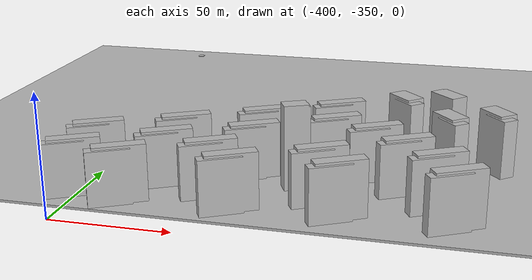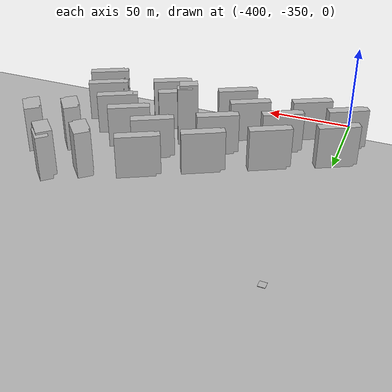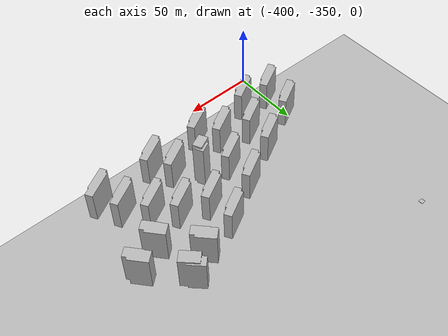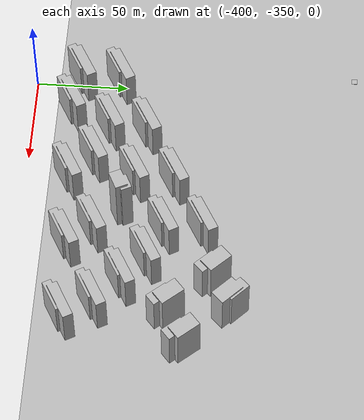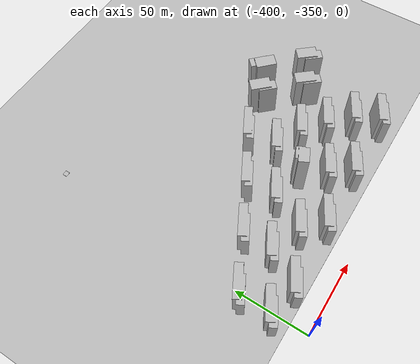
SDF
<sdf version="1.7">
 <world name="default">
  <model name="ground_plane">
   <static>1</static>
   <link name="link">
    <collision name="collision">
     <geometry><mesh><uri>model://ground_plane/scripts/plane.dae</uri><normal>0 0 1</normal></mesh></geometry>
     <surface><friction><ode><mu>100</mu><mu2>50</mu2></ode></friction></surface>
    </collision>
    <visual name="visual">
     <geometry><mesh><uri>model://ground_plane/scripts/plane.dae</uri><normal>0 0 1</normal></mesh></geometry>
     <material>
      <lighting>1</lighting>
      <script><uri>model://ground_plane/scripts/plane.jpg</uri><name>__default__</name></script>
      <shader type="pixel"/>
     </material>
    </visual>
   </link>
  </model>
  <model name="apartment5">
   <static>1</static>
   <link name="link_0">
    <inertial>
     <mass>1</mass>
     <inertia>
      <ixx>0.166667</ixx>
      <ixy>0</ixy>
      <ixz>0</ixz>
      <iyy>0.166667</iyy>
      <iyz>0</iyz>
      <izz>0.166667</izz>
     </inertia>
    </inertial>
    <pose>1e-06 -0 0 0 -0 0</pose>
    <visual name="visual">
     <geometry>
      <mesh><uri>model://apartment5/scripts/apartment1.dae</uri><scale>0.35 0.14 0.22</scale></mesh>
     </geometry>
     <material>
      <lighting>1</lighting>
      <script><uri>model://apartment5/scripts/apartment1.jpg</uri><name>__default__</name></script>
      <shader type="pixel"/>
     </material>
    </visual>
    <collision name="collision">
     <geometry>
      <mesh><uri>model://apartment5/scripts/apartment1.dae</uri><scale>0.35 0.14 0.22</scale></mesh>
     </geometry>
     <surface>
      <friction>
       <ode><mu>1</mu><mu2>1</mu2><fdir1>0 0 0</fdir1><slip1>0</slip1><slip2>0</slip2></ode>
       <torsional>
        <coefficient>1</coefficient>
        <patch_radius>0</patch_radius>
        <surface_radius>0</surface_radius>
        <use_patch_radius>1</use_patch_radius>
        <ode><slip>0</slip></ode>
       </torsional>
      </friction>
      <bounce><restitution_coefficient>0</restitution_coefficient><threshold>1e+06</threshold></bounce>
      <contact>
       <collide_without_contact>0</collide_without_contact>
       <collide_without_contact_bitmask>1</collide_without_contact_bitmask>
       <collide_bitmask>1</collide_bitmask>
       <ode>
        <soft_cfm>0</soft_cfm>
        <soft_erp>0.2</soft_erp>
        <kp>1e+13</kp>
        <kd>1</kd>
        <max_vel>0.01</max_vel>
        <min_depth>0</min_depth>
       </ode>
       <bullet>
        <split_impulse>1</split_impulse>
        <split_impulse_penetration_threshold>-0.01</split_impulse_penetration_threshold>
        <soft_cfm>0</soft_cfm>
        <soft_erp>0.2</soft_erp>
        <kp>1e+13</kp>
        <kd>1</kd>
       </bullet>
      </contact>
     </surface>
    </collision>
   </link>
   <static>0</static>
   <pose>-258.765 -236.93 0 0 0 -0.783167</pose>
  </model>
  <model name="apartment5_clone">
   <static>1</static>
   <link name="link_0">
    <inertial>
     <mass>1</mass>
     <inertia>
      <ixx>0.166667</ixx>
      <ixy>0</ixy>
      <ixz>0</ixz>
      <iyy>0.166667</iyy>
      <iyz>0</iyz>
      <izz>0.166667</izz>
     </inertia>
    </inertial>
    <pose>1e-06 -0 0 0 -0 0</pose>
    <visual name="visual">
     <geometry>
      <mesh><uri>model://apartment5/scripts/apartment1.dae</uri><scale>0.35 0.14 0.22</scale></mesh>
     </geometry>
     <material>
      <lighting>1</lighting>
      <script><uri>model://apartment5/scripts/apartment1.jpg</uri><name>__default__</name></script>
      <shader type="pixel"/>
     </material>
    </visual>
    <collision name="collision">
     <geometry>
      <mesh><uri>model://apartment5/scripts/apartment1.dae</uri><scale>0.35 0.14 0.22</scale></mesh>
     </geometry>
     <surface>
      <friction>
       <ode><mu>1</mu><mu2>1</mu2><fdir1>0 0 0</fdir1><slip1>0</slip1><slip2>0</slip2></ode>
       <torsional>
        <coefficient>1</coefficient>
        <patch_radius>0</patch_radius>
        <surface_radius>0</surface_radius>
        <use_patch_radius>1</use_patch_radius>
        <ode><slip>0</slip></ode>
       </torsional>
      </friction>
      <bounce><restitution_coefficient>0</restitution_coefficient><threshold>1e+06</threshold></bounce>
      <contact>
       <collide_without_contact>0</collide_without_contact>
       <collide_without_contact_bitmask>1</collide_without_contact_bitmask>
       <collide_bitmask>1</collide_bitmask>
       <ode>
        <soft_cfm>0</soft_cfm>
        <soft_erp>0.2</soft_erp>
        <kp>1e+13</kp>
        <kd>1</kd>
        <max_vel>0.01</max_vel>
        <min_depth>0</min_depth>
       </ode>
       <bullet>
        <split_impulse>1</split_impulse>
        <split_impulse_penetration_threshold>-0.01</split_impulse_penetration_threshold>
        <soft_cfm>0</soft_cfm>
        <soft_erp>0.2</soft_erp>
        <kp>1e+13</kp>
        <kd>1</kd>
       </bullet>
      </contact>
     </surface>
    </collision>
   </link>
   <static>0</static>
   <pose>-236.926 -257.475 0 0 -0 2.27204</pose>
  </model>
  <model name="apartment5_clone_clone">
   <static>1</static>
   <link name="link_0">
    <inertial>
     <mass>1</mass>
     <inertia>
      <ixx>0.166667</ixx>
      <ixy>0</ixy>
      <ixz>0</ixz>
      <iyy>0.166667</iyy>
      <iyz>0</iyz>
      <izz>0.166667</izz>
     </inertia>
    </inertial>
    <pose>1e-06 -0 0 0 -0 0</pose>
    <visual name="visual">
     <geometry>
      <mesh><uri>model://apartment5/scripts/apartment1.dae</uri><scale>0.35 0.14 0.22</scale></mesh>
     </geometry>
     <material>
      <lighting>1</lighting>
      <script><uri>model://apartment5/scripts/apartment1.jpg</uri><name>__default__</name></script>
      <shader type="pixel"/>
     </material>
    </visual>
    <collision name="collision">
     <geometry>
      <mesh><uri>model://apartment5/scripts/apartment1.dae</uri><scale>0.35 0.14 0.22</scale></mesh>
     </geometry>
     <surface>
      <friction>
       <ode><mu>1</mu><mu2>1</mu2><fdir1>0 0 0</fdir1><slip1>0</slip1><slip2>0</slip2></ode>
       <torsional>
        <coefficient>1</coefficient>
        <patch_radius>0</patch_radius>
        <surface_radius>0</surface_radius>
        <use_patch_radius>1</use_patch_radius>
        <ode><slip>0</slip></ode>
       </torsional>
      </friction>
      <bounce><restitution_coefficient>0</restitution_coefficient><threshold>1e+06</threshold></bounce>
      <contact>
       <collide_without_contact>0</collide_without_contact>
       <collide_without_contact_bitmask>1</collide_without_contact_bitmask>
       <collide_bitmask>1</collide_bitmask>
       <ode>
        <soft_cfm>0</soft_cfm>
        <soft_erp>0.2</soft_erp>
        <kp>1e+13</kp>
        <kd>1</kd>
        <max_vel>0.01</max_vel>
        <min_depth>0</min_depth>
       </ode>
       <bullet>
        <split_impulse>1</split_impulse>
        <split_impulse_penetration_threshold>-0.01</split_impulse_penetration_threshold>
        <soft_cfm>0</soft_cfm>
        <soft_erp>0.2</soft_erp>
        <kp>1e+13</kp>
        <kd>1</kd>
       </bullet>
      </contact>
     </surface>
    </collision>
   </link>
   <static>0</static>
   <pose>-256.288 -266.667 0 0 -0 2.27204</pose>
  </model>
  <model name="apartment5_clone_2">
   <static>1</static>
   <link name="link_0">
    <inertial>
     <mass>1</mass>
     <inertia>
      <ixx>0.166667</ixx>
      <ixy>0</ixy>
      <ixz>0</ixz>
      <iyy>0.166667</iyy>
      <iyz>0</iyz>
      <izz>0.166667</izz>
     </inertia>
    </inertial>
    <pose>1e-06 -0 0 0 -0 0</pose>
    <visual name="visual">
     <geometry>
      <mesh><uri>model://apartment5/scripts/apartment1.dae</uri><scale>0.35 0.14 0.22</scale></mesh>
     </geometry>
     <material>
      <lighting>1</lighting>
      <script><uri>model://apartment5/scripts/apartment1.jpg</uri><name>__default__</name></script>
      <shader type="pixel"/>
     </material>
    </visual>
    <collision name="collision">
     <geometry>
      <mesh><uri>model://apartment5/scripts/apartment1.dae</uri><scale>0.35 0.14 0.22</scale></mesh>
     </geometry>
     <surface>
      <friction>
       <ode><mu>1</mu><mu2>1</mu2><fdir1>0 0 0</fdir1><slip1>0</slip1><slip2>0</slip2></ode>
       <torsional>
        <coefficient>1</coefficient>
        <patch_radius>0</patch_radius>
        <surface_radius>0</surface_radius>
        <use_patch_radius>1</use_patch_radius>
        <ode><slip>0</slip></ode>
       </torsional>
      </friction>
      <bounce><restitution_coefficient>0</restitution_coefficient><threshold>1e+06</threshold></bounce>
      <contact>
       <collide_without_contact>0</collide_without_contact>
       <collide_without_contact_bitmask>1</collide_without_contact_bitmask>
       <collide_bitmask>1</collide_bitmask>
       <ode>
        <soft_cfm>0</soft_cfm>
        <soft_erp>0.2</soft_erp>
        <kp>1e+13</kp>
        <kd>1</kd>
        <max_vel>0.01</max_vel>
        <min_depth>0</min_depth>
       </ode>
       <bullet>
        <split_impulse>1</split_impulse>
        <split_impulse_penetration_threshold>-0.01</split_impulse_penetration_threshold>
        <soft_cfm>0</soft_cfm>
        <soft_erp>0.2</soft_erp>
        <kp>1e+13</kp>
        <kd>1</kd>
       </bullet>
      </contact>
     </surface>
    </collision>
   </link>
   <static>0</static>
   <pose>-277.284 -243.703 0 0 -0 2.32817</pose>
  </model>
  <model name="apartment6_clone">
   <static>1</static>
   <link name="link_0">
    <inertial>
     <mass>1</mass>
     <inertia>
      <ixx>0.166667</ixx>
      <ixy>0</ixy>
      <ixz>0</ixz>
      <iyy>0.166667</iyy>
      <iyz>0</iyz>
      <izz>0.166667</izz>
     </inertia>
    </inertial>
    <pose>1e-06 -0 0 0 -0 0</pose>
    <visual name="visual">
     <geometry>
      <mesh><uri>model://apartment6/scripts/apartment1.dae</uri><scale>0.14 0.35 0.2</scale></mesh>
     </geometry>
     <material>
      <lighting>1</lighting>
      <script><uri>model://apartment6/scripts/apartment1.jpg</uri><name>__default__</name></script>
      <shader type="pixel"/>
     </material>
    </visual>
    <collision name="collision">
     <geometry>
      <mesh><uri>model://apartment6/scripts/apartment1.dae</uri><scale>0.14 0.35 0.2</scale></mesh>
     </geometry>
     <surface>
      <friction>
       <ode><mu>1</mu><mu2>1</mu2><fdir1>0 0 0</fdir1><slip1>0</slip1><slip2>0</slip2></ode>
       <torsional>
        <coefficient>1</coefficient>
        <patch_radius>0</patch_radius>
        <surface_radius>0</surface_radius>
        <use_patch_radius>1</use_patch_radius>
        <ode><slip>0</slip></ode>
       </torsional>
      </friction>
      <bounce><restitution_coefficient>0</restitution_coefficient><threshold>1e+06</threshold></bounce>
      <contact>
       <collide_without_contact>0</collide_without_contact>
       <collide_without_contact_bitmask>1</collide_without_contact_bitmask>
       <collide_bitmask>1</collide_bitmask>
       <ode>
        <soft_cfm>0</soft_cfm>
        <soft_erp>0.2</soft_erp>
        <kp>1e+13</kp>
        <kd>1</kd>
        <max_vel>0.01</max_vel>
        <min_depth>0</min_depth>
       </ode>
       <bullet>
        <split_impulse>1</split_impulse>
        <split_impulse_penetration_threshold>-0.01</split_impulse_penetration_threshold>
        <soft_cfm>0</soft_cfm>
        <soft_erp>0.2</soft_erp>
        <kp>1e+13</kp>
        <kd>1</kd>
       </bullet>
      </contact>
     </surface>
    </collision>
   </link>
   <static>0</static>
   <pose>-335.264 -268.23 0 0 -0 2.07367</pose>
  </model>
  <model name="apartment6_clone_0">
   <static>1</static>
   <link name="link_0">
    <inertial>
     <mass>1</mass>
     <inertia>
      <ixx>0.166667</ixx>
      <ixy>0</ixy>
      <ixz>0</ixz>
      <iyy>0.166667</iyy>
      <iyz>0</iyz>
      <izz>0.166667</izz>
     </inertia>
    </inertial>
    <pose>1e-06 -0 0 0 -0 0</pose>
    <visual name="visual">
     <geometry>
      <mesh><uri>model://apartment6/scripts/apartment1.dae</uri><scale>0.14 0.35 0.2</scale></mesh>
     </geometry>
     <material>
      <lighting>1</lighting>
      <script><uri>model://apartment6/scripts/apartment1.jpg</uri><name>__default__</name></script>
      <shader type="pixel"/>
     </material>
    </visual>
    <collision name="collision">
     <geometry>
      <mesh><uri>model://apartment6/scripts/apartment1.dae</uri><scale>0.14 0.35 0.2</scale></mesh>
     </geometry>
     <surface>
      <friction>
       <ode><mu>1</mu><mu2>1</mu2><fdir1>0 0 0</fdir1><slip1>0</slip1><slip2>0</slip2></ode>
       <torsional>
        <coefficient>1</coefficient>
        <patch_radius>0</patch_radius>
        <surface_radius>0</surface_radius>
        <use_patch_radius>1</use_patch_radius>
        <ode><slip>0</slip></ode>
       </torsional>
      </friction>
      <bounce><restitution_coefficient>0</restitution_coefficient><threshold>1e+06</threshold></bounce>
      <contact>
       <collide_without_contact>0</collide_without_contact>
       <collide_without_contact_bitmask>1</collide_without_contact_bitmask>
       <collide_bitmask>1</collide_bitmask>
       <ode>
        <soft_cfm>0</soft_cfm>
        <soft_erp>0.2</soft_erp>
        <kp>1e+13</kp>
        <kd>1</kd>
        <max_vel>0.01</max_vel>
        <min_depth>0</min_depth>
       </ode>
       <bullet>
        <split_impulse>1</split_impulse>
        <split_impulse_penetration_threshold>-0.01</split_impulse_penetration_threshold>
        <soft_cfm>0</soft_cfm>
        <soft_erp>0.2</soft_erp>
        <kp>1e+13</kp>
        <kd>1</kd>
       </bullet>
      </contact>
     </surface>
    </collision>
   </link>
   <static>0</static>
   <pose>-366.84 -285.113 0 0 -0 2.07367</pose>
  </model>
  <model name="apartment6_clone_1">
   <static>1</static>
   <link name="link_0">
    <inertial>
     <mass>1</mass>
     <inertia>
      <ixx>0.166667</ixx>
      <ixy>0</ixy>
      <ixz>0</ixz>
      <iyy>0.166667</iyy>
      <iyz>0</iyz>
      <izz>0.166667</izz>
     </inertia>
    </inertial>
    <pose>1e-06 -0 0 0 -0 0</pose>
    <visual name="visual">
     <geometry>
      <mesh><uri>model://apartment6/scripts/apartment1.dae</uri><scale>0.14 0.35 0.2</scale></mesh>
     </geometry>
     <material>
      <lighting>1</lighting>
      <script><uri>model://apartment6/scripts/apartment1.jpg</uri><name>__default__</name></script>
      <shader type="pixel"/>
     </material>
    </visual>
    <collision name="collision">
     <geometry>
      <mesh><uri>model://apartment6/scripts/apartment1.dae</uri><scale>0.14 0.35 0.2</scale></mesh>
     </geometry>
     <surface>
      <friction>
       <ode><mu>1</mu><mu2>1</mu2><fdir1>0 0 0</fdir1><slip1>0</slip1><slip2>0</slip2></ode>
       <torsional>
        <coefficient>1</coefficient>
        <patch_radius>0</patch_radius>
        <surface_radius>0</surface_radius>
        <use_patch_radius>1</use_patch_radius>
        <ode><slip>0</slip></ode>
       </torsional>
      </friction>
      <bounce><restitution_coefficient>0</restitution_coefficient><threshold>1e+06</threshold></bounce>
      <contact>
       <collide_without_contact>0</collide_without_contact>
       <collide_without_contact_bitmask>1</collide_without_contact_bitmask>
       <collide_bitmask>1</collide_bitmask>
       <ode>
        <soft_cfm>0</soft_cfm>
        <soft_erp>0.2</soft_erp>
        <kp>1e+13</kp>
        <kd>1</kd>
        <max_vel>0.01</max_vel>
        <min_depth>0</min_depth>
       </ode>
       <bullet>
        <split_impulse>1</split_impulse>
        <split_impulse_penetration_threshold>-0.01</split_impulse_penetration_threshold>
        <soft_cfm>0</soft_cfm>
        <soft_erp>0.2</soft_erp>
        <kp>1e+13</kp>
        <kd>1</kd>
       </bullet>
      </contact>
     </surface>
    </collision>
   </link>
   <static>0</static>
   <pose>-399.516 -302.013 0 0 -0 2.07367</pose>
  </model>
  <model name="apartment6_clone_2">
   <static>1</static>
   <link name="link_0">
    <inertial>
     <mass>1</mass>
     <inertia>
      <ixx>0.166667</ixx>
      <ixy>0</ixy>
      <ixz>0</ixz>
      <iyy>0.166667</iyy>
      <iyz>0</iyz>
      <izz>0.166667</izz>
     </inertia>
    </inertial>
    <pose>1e-06 -0 0 0 -0 0</pose>
    <visual name="visual">
     <geometry>
      <mesh><uri>model://apartment6/scripts/apartment1.dae</uri><scale>0.14 0.35 0.2</scale></mesh>
     </geometry>
     <material>
      <lighting>1</lighting>
      <script><uri>model://apartment6/scripts/apartment1.jpg</uri><name>__default__</name></script>
      <shader type="pixel"/>
     </material>
    </visual>
    <collision name="collision">
     <geometry>
      <mesh><uri>model://apartment6/scripts/apartment1.dae</uri><scale>0.14 0.35 0.2</scale></mesh>
     </geometry>
     <surface>
      <friction>
       <ode><mu>1</mu><mu2>1</mu2><fdir1>0 0 0</fdir1><slip1>0</slip1><slip2>0</slip2></ode>
       <torsional>
        <coefficient>1</coefficient>
        <patch_radius>0</patch_radius>
        <surface_radius>0</surface_radius>
        <use_patch_radius>1</use_patch_radius>
        <ode><slip>0</slip></ode>
       </torsional>
      </friction>
      <bounce><restitution_coefficient>0</restitution_coefficient><threshold>1e+06</threshold></bounce>
      <contact>
       <collide_without_contact>0</collide_without_contact>
       <collide_without_contact_bitmask>1</collide_without_contact_bitmask>
       <collide_bitmask>1</collide_bitmask>
       <ode>
        <soft_cfm>0</soft_cfm>
        <soft_erp>0.2</soft_erp>
        <kp>1e+13</kp>
        <kd>1</kd>
        <max_vel>0.01</max_vel>
        <min_depth>0</min_depth>
       </ode>
       <bullet>
        <split_impulse>1</split_impulse>
        <split_impulse_penetration_threshold>-0.01</split_impulse_penetration_threshold>
        <soft_cfm>0</soft_cfm>
        <soft_erp>0.2</soft_erp>
        <kp>1e+13</kp>
        <kd>1</kd>
       </bullet>
      </contact>
     </surface>
    </collision>
   </link>
   <static>0</static>
   <pose>-303.888 -271.754 0 0 -0 2.07367</pose>
  </model>
  <model name="apartment6_clone_3">
   <static>1</static>
   <link name="link_0">
    <inertial>
     <mass>1</mass>
     <inertia>
      <ixx>0.166667</ixx>
      <ixy>0</ixy>
      <ixz>0</ixz>
      <iyy>0.166667</iyy>
      <iyz>0</iyz>
      <izz>0.166667</izz>
     </inertia>
    </inertial>
    <pose>1e-06 -0 0 0 -0 0</pose>
    <visual name="visual">
     <geometry>
      <mesh><uri>model://apartment6/scripts/apartment1.dae</uri><scale>0.14 0.35 0.2</scale></mesh>
     </geometry>
     <material>
      <lighting>1</lighting>
      <script><uri>model://apartment6/scripts/apartment1.jpg</uri><name>__default__</name></script>
      <shader type="pixel"/>
     </material>
    </visual>
    <collision name="collision">
     <geometry>
      <mesh><uri>model://apartment6/scripts/apartment1.dae</uri><scale>0.14 0.35 0.2</scale></mesh>
     </geometry>
     <surface>
      <friction>
       <ode><mu>1</mu><mu2>1</mu2><fdir1>0 0 0</fdir1><slip1>0</slip1><slip2>0</slip2></ode>
       <torsional>
        <coefficient>1</coefficient>
        <patch_radius>0</patch_radius>
        <surface_radius>0</surface_radius>
        <use_patch_radius>1</use_patch_radius>
        <ode><slip>0</slip></ode>
       </torsional>
      </friction>
      <bounce><restitution_coefficient>0</restitution_coefficient><threshold>1e+06</threshold></bounce>
      <contact>
       <collide_without_contact>0</collide_without_contact>
       <collide_without_contact_bitmask>1</collide_without_contact_bitmask>
       <collide_bitmask>1</collide_bitmask>
       <ode>
        <soft_cfm>0</soft_cfm>
        <soft_erp>0.2</soft_erp>
        <kp>1e+13</kp>
        <kd>1</kd>
        <max_vel>0.01</max_vel>
        <min_depth>0</min_depth>
       </ode>
       <bullet>
        <split_impulse>1</split_impulse>
        <split_impulse_penetration_threshold>-0.01</split_impulse_penetration_threshold>
        <soft_cfm>0</soft_cfm>
        <soft_erp>0.2</soft_erp>
        <kp>1e+13</kp>
        <kd>1</kd>
       </bullet>
      </contact>
     </surface>
    </collision>
   </link>
   <static>0</static>
   <pose>-335.37 -289.416 0 0 -0 2.07367</pose>
  </model>
  <model name="apartment6_clone_4">
   <static>1</static>
   <link name="link_0">
    <inertial>
     <mass>1</mass>
     <inertia>
      <ixx>0.166667</ixx>
      <ixy>0</ixy>
      <ixz>0</ixz>
      <iyy>0.166667</iyy>
      <iyz>0</iyz>
      <izz>0.166667</izz>
     </inertia>
    </inertial>
    <pose>1e-06 -0 0 0 -0 0</pose>
    <visual name="visual">
     <geometry>
      <mesh><uri>model://apartment6/scripts/apartment1.dae</uri><scale>0.14 0.35 0.2</scale></mesh>
     </geometry>
     <material>
      <lighting>1</lighting>
      <script><uri>model://apartment6/scripts/apartment1.jpg</uri><name>__default__</name></script>
      <shader type="pixel"/>
     </material>
    </visual>
    <collision name="collision">
     <geometry>
      <mesh><uri>model://apartment6/scripts/apartment1.dae</uri><scale>0.14 0.35 0.2</scale></mesh>
     </geometry>
     <surface>
      <friction>
       <ode><mu>1</mu><mu2>1</mu2><fdir1>0 0 0</fdir1><slip1>0</slip1><slip2>0</slip2></ode>
       <torsional>
        <coefficient>1</coefficient>
        <patch_radius>0</patch_radius>
        <surface_radius>0</surface_radius>
        <use_patch_radius>1</use_patch_radius>
        <ode><slip>0</slip></ode>
       </torsional>
      </friction>
      <bounce><restitution_coefficient>0</restitution_coefficient><threshold>1e+06</threshold></bounce>
      <contact>
       <collide_without_contact>0</collide_without_contact>
       <collide_without_contact_bitmask>1</collide_without_contact_bitmask>
       <collide_bitmask>1</collide_bitmask>
       <ode>
        <soft_cfm>0</soft_cfm>
        <soft_erp>0.2</soft_erp>
        <kp>1e+13</kp>
        <kd>1</kd>
        <max_vel>0.01</max_vel>
        <min_depth>0</min_depth>
       </ode>
       <bullet>
        <split_impulse>1</split_impulse>
        <split_impulse_penetration_threshold>-0.01</split_impulse_penetration_threshold>
        <soft_cfm>0</soft_cfm>
        <soft_erp>0.2</soft_erp>
        <kp>1e+13</kp>
        <kd>1</kd>
       </bullet>
      </contact>
     </surface>
    </collision>
   </link>
   <static>0</static>
   <pose>-367.987 -305.37 0 0 -0 2.07367</pose>
  </model>
  <model name="apartment6_clone_5">
   <static>1</static>
   <link name="link_0">
    <inertial>
     <mass>1</mass>
     <inertia>
      <ixx>0.166667</ixx>
      <ixy>0</ixy>
      <ixz>0</ixz>
      <iyy>0.166667</iyy>
      <iyz>0</iyz>
      <izz>0.166667</izz>
     </inertia>
    </inertial>
    <pose>1e-06 -0 0 0 -0 0</pose>
    <visual name="visual">
     <geometry>
      <mesh><uri>model://apartment6/scripts/apartment1.dae</uri><scale>0.14 0.35 0.2</scale></mesh>
     </geometry>
     <material>
      <lighting>1</lighting>
      <script><uri>model://apartment6/scripts/apartment1.jpg</uri><name>__default__</name></script>
      <shader type="pixel"/>
     </material>
    </visual>
    <collision name="collision">
     <geometry>
      <mesh><uri>model://apartment6/scripts/apartment1.dae</uri><scale>0.14 0.35 0.2</scale></mesh>
     </geometry>
     <surface>
      <friction>
       <ode><mu>1</mu><mu2>1</mu2><fdir1>0 0 0</fdir1><slip1>0</slip1><slip2>0</slip2></ode>
       <torsional>
        <coefficient>1</coefficient>
        <patch_radius>0</patch_radius>
        <surface_radius>0</surface_radius>
        <use_patch_radius>1</use_patch_radius>
        <ode><slip>0</slip></ode>
       </torsional>
      </friction>
      <bounce><restitution_coefficient>0</restitution_coefficient><threshold>1e+06</threshold></bounce>
      <contact>
       <collide_without_contact>0</collide_without_contact>
       <collide_without_contact_bitmask>1</collide_without_contact_bitmask>
       <collide_bitmask>1</collide_bitmask>
       <ode>
        <soft_cfm>0</soft_cfm>
        <soft_erp>0.2</soft_erp>
        <kp>1e+13</kp>
        <kd>1</kd>
        <max_vel>0.01</max_vel>
        <min_depth>0</min_depth>
       </ode>
       <bullet>
        <split_impulse>1</split_impulse>
        <split_impulse_penetration_threshold>-0.01</split_impulse_penetration_threshold>
        <soft_cfm>0</soft_cfm>
        <soft_erp>0.2</soft_erp>
        <kp>1e+13</kp>
        <kd>1</kd>
       </bullet>
      </contact>
     </surface>
    </collision>
   </link>
   <static>0</static>
   <pose>-400.549 -323.422 0 0 -0 2.07367</pose>
  </model>
  <model name="apartment6_clone_2_clone">
   <static>1</static>
   <link name="link_0">
    <inertial>
     <mass>1</mass>
     <inertia>
      <ixx>0.166667</ixx>
      <ixy>0</ixy>
      <ixz>0</ixz>
      <iyy>0.166667</iyy>
      <iyz>0</iyz>
      <izz>0.166667</izz>
     </inertia>
    </inertial>
    <pose>1e-06 -0 0 0 -0 0</pose>
    <visual name="visual">
     <geometry>
      <mesh><uri>model://apartment6/scripts/apartment1.dae</uri><scale>0.14 0.35 0.2</scale></mesh>
     </geometry>
     <material>
      <lighting>1</lighting>
      <script><uri>model://apartment6/scripts/apartment1.jpg</uri><name>__default__</name></script>
      <shader type="pixel"/>
     </material>
    </visual>
    <collision name="collision">
     <geometry>
      <mesh><uri>model://apartment6/scripts/apartment1.dae</uri><scale>0.14 0.35 0.2</scale></mesh>
     </geometry>
     <surface>
      <friction>
       <ode><mu>1</mu><mu2>1</mu2><fdir1>0 0 0</fdir1><slip1>0</slip1><slip2>0</slip2></ode>
       <torsional>
        <coefficient>1</coefficient>
        <patch_radius>0</patch_radius>
        <surface_radius>0</surface_radius>
        <use_patch_radius>1</use_patch_radius>
        <ode><slip>0</slip></ode>
       </torsional>
      </friction>
      <bounce><restitution_coefficient>0</restitution_coefficient><threshold>1e+06</threshold></bounce>
      <contact>
       <collide_without_contact>0</collide_without_contact>
       <collide_without_contact_bitmask>1</collide_without_contact_bitmask>
       <collide_bitmask>1</collide_bitmask>
       <ode>
        <soft_cfm>0</soft_cfm>
        <soft_erp>0.2</soft_erp>
        <kp>1e+13</kp>
        <kd>1</kd>
        <max_vel>0.01</max_vel>
        <min_depth>0</min_depth>
       </ode>
       <bullet>
        <split_impulse>1</split_impulse>
        <split_impulse_penetration_threshold>-0.01</split_impulse_penetration_threshold>
        <soft_cfm>0</soft_cfm>
        <soft_erp>0.2</soft_erp>
        <kp>1e+13</kp>
        <kd>1</kd>
       </bullet>
      </contact>
     </surface>
    </collision>
   </link>
   <static>0</static>
   <pose>-285.106 -279.66 0 0 -0 2.07367</pose>
  </model>
  <model name="apartment6_clone_2_clone_1">
   <static>1</static>
   <link name="link_0">
    <inertial>
     <mass>1</mass>
     <inertia>
      <ixx>0.166667</ixx>
      <ixy>0</ixy>
      <ixz>0</ixz>
      <iyy>0.166667</iyy>
      <iyz>0</iyz>
      <izz>0.166667</izz>
     </inertia>
    </inertial>
    <pose>1e-06 -0 0 0 -0 0</pose>
    <visual name="visual">
     <geometry>
      <mesh><uri>model://apartment6/scripts/apartment1.dae</uri><scale>0.14 0.35 0.2</scale></mesh>
     </geometry>
     <material>
      <lighting>1</lighting>
      <script><uri>model://apartment6/scripts/apartment1.jpg</uri><name>__default__</name></script>
      <shader type="pixel"/>
     </material>
    </visual>
    <collision name="collision">
     <geometry>
      <mesh><uri>model://apartment6/scripts/apartment1.dae</uri><scale>0.14 0.35 0.2</scale></mesh>
     </geometry>
     <surface>
      <friction>
       <ode><mu>1</mu><mu2>1</mu2><fdir1>0 0 0</fdir1><slip1>0</slip1><slip2>0</slip2></ode>
       <torsional>
        <coefficient>1</coefficient>
        <patch_radius>0</patch_radius>
        <surface_radius>0</surface_radius>
        <use_patch_radius>1</use_patch_radius>
        <ode><slip>0</slip></ode>
       </torsional>
      </friction>
      <bounce><restitution_coefficient>0</restitution_coefficient><threshold>1e+06</threshold></bounce>
      <contact>
       <collide_without_contact>0</collide_without_contact>
       <collide_without_contact_bitmask>1</collide_without_contact_bitmask>
       <collide_bitmask>1</collide_bitmask>
       <ode>
        <soft_cfm>0</soft_cfm>
        <soft_erp>0.2</soft_erp>
        <kp>1e+13</kp>
        <kd>1</kd>
        <max_vel>0.01</max_vel>
        <min_depth>0</min_depth>
       </ode>
       <bullet>
        <split_impulse>1</split_impulse>
        <split_impulse_penetration_threshold>-0.01</split_impulse_penetration_threshold>
        <soft_cfm>0</soft_cfm>
        <soft_erp>0.2</soft_erp>
        <kp>1e+13</kp>
        <kd>1</kd>
       </bullet>
      </contact>
     </surface>
    </collision>
   </link>
   <static>0</static>
   <pose>-346.767 -312.457 0 0 -0 2.07367</pose>
  </model>
  <model name="apartment6_clone_2_clone_2">
   <static>1</static>
   <link name="link_0">
    <inertial>
     <mass>1</mass>
     <inertia>
      <ixx>0.166667</ixx>
      <ixy>0</ixy>
      <ixz>0</ixz>
      <iyy>0.166667</iyy>
      <iyz>0</iyz>
      <izz>0.166667</izz>
     </inertia>
    </inertial>
    <pose>1e-06 -0 0 0 -0 0</pose>
    <visual name="visual">
     <geometry>
      <mesh><uri>model://apartment6/scripts/apartment1.dae</uri><scale>0.14 0.35 0.2</scale></mesh>
     </geometry>
     <material>
      <lighting>1</lighting>
      <script><uri>model://apartment6/scripts/apartment1.jpg</uri><name>__default__</name></script>
      <shader type="pixel"/>
     </material>
    </visual>
    <collision name="collision">
     <geometry>
      <mesh><uri>model://apartment6/scripts/apartment1.dae</uri><scale>0.14 0.35 0.2</scale></mesh>
     </geometry>
     <surface>
      <friction>
       <ode><mu>1</mu><mu2>1</mu2><fdir1>0 0 0</fdir1><slip1>0</slip1><slip2>0</slip2></ode>
       <torsional>
        <coefficient>1</coefficient>
        <patch_radius>0</patch_radius>
        <surface_radius>0</surface_radius>
        <use_patch_radius>1</use_patch_radius>
        <ode><slip>0</slip></ode>
       </torsional>
      </friction>
      <bounce><restitution_coefficient>0</restitution_coefficient><threshold>1e+06</threshold></bounce>
      <contact>
       <collide_without_contact>0</collide_without_contact>
       <collide_without_contact_bitmask>1</collide_without_contact_bitmask>
       <collide_bitmask>1</collide_bitmask>
       <ode>
        <soft_cfm>0</soft_cfm>
        <soft_erp>0.2</soft_erp>
        <kp>1e+13</kp>
        <kd>1</kd>
        <max_vel>0.01</max_vel>
        <min_depth>0</min_depth>
       </ode>
       <bullet>
        <split_impulse>1</split_impulse>
        <split_impulse_penetration_threshold>-0.01</split_impulse_penetration_threshold>
        <soft_cfm>0</soft_cfm>
        <soft_erp>0.2</soft_erp>
        <kp>1e+13</kp>
        <kd>1</kd>
       </bullet>
      </contact>
     </surface>
    </collision>
   </link>
   <static>0</static>
   <pose>-379.415 -327.223 0 0 -0 2.07367</pose>
  </model>
  <model name="apartment6_clone_2_clone_3">
   <static>1</static>
   <link name="link_0">
    <inertial>
     <mass>1</mass>
     <inertia>
      <ixx>0.166667</ixx>
      <ixy>0</ixy>
      <ixz>0</ixz>
      <iyy>0.166667</iyy>
      <iyz>0</iyz>
      <izz>0.166667</izz>
     </inertia>
    </inertial>
    <pose>1e-06 -0 0 0 -0 0</pose>
    <visual name="visual">
     <geometry>
      <mesh><uri>model://apartment6/scripts/apartment1.dae</uri><scale>0.14 0.35 0.2</scale></mesh>
     </geometry>
     <material>
      <lighting>1</lighting>
      <script><uri>model://apartment6/scripts/apartment1.jpg</uri><name>__default__</name></script>
      <shader type="pixel"/>
     </material>
    </visual>
    <collision name="collision">
     <geometry>
      <mesh><uri>model://apartment6/scripts/apartment1.dae</uri><scale>0.14 0.35 0.2</scale></mesh>
     </geometry>
     <surface>
      <friction>
       <ode><mu>1</mu><mu2>1</mu2><fdir1>0 0 0</fdir1><slip1>0</slip1><slip2>0</slip2></ode>
       <torsional>
        <coefficient>1</coefficient>
        <patch_radius>0</patch_radius>
        <surface_radius>0</surface_radius>
        <use_patch_radius>1</use_patch_radius>
        <ode><slip>0</slip></ode>
       </torsional>
      </friction>
      <bounce><restitution_coefficient>0</restitution_coefficient><threshold>1e+06</threshold></bounce>
      <contact>
       <collide_without_contact>0</collide_without_contact>
       <collide_without_contact_bitmask>1</collide_without_contact_bitmask>
       <collide_bitmask>1</collide_bitmask>
       <ode>
        <soft_cfm>0</soft_cfm>
        <soft_erp>0.2</soft_erp>
        <kp>1e+13</kp>
        <kd>1</kd>
        <max_vel>0.01</max_vel>
        <min_depth>0</min_depth>
       </ode>
       <bullet>
        <split_impulse>1</split_impulse>
        <split_impulse_penetration_threshold>-0.01</split_impulse_penetration_threshold>
        <soft_cfm>0</soft_cfm>
        <soft_erp>0.2</soft_erp>
        <kp>1e+13</kp>
        <kd>1</kd>
       </bullet>
      </contact>
     </surface>
    </collision>
   </link>
   <static>0</static>
   <pose>-271.082 -291.903 0 0 -0 2.07367</pose>
  </model>
  <model name="apartment6_clone_2_clone_4">
   <static>1</static>
   <link name="link_0">
    <inertial>
     <mass>1</mass>
     <inertia>
      <ixx>0.166667</ixx>
      <ixy>0</ixy>
      <ixz>0</ixz>
      <iyy>0.166667</iyy>
      <iyz>0</iyz>
      <izz>0.166667</izz>
     </inertia>
    </inertial>
    <pose>1e-06 -0 0 0 -0 0</pose>
    <visual name="visual">
     <geometry>
      <mesh><uri>model://apartment6/scripts/apartment1.dae</uri><scale>0.14 0.35 0.2</scale></mesh>
     </geometry>
     <material>
      <lighting>1</lighting>
      <script><uri>model://apartment6/scripts/apartment1.jpg</uri><name>__default__</name></script>
      <shader type="pixel"/>
     </material>
    </visual>
    <collision name="collision">
     <geometry>
      <mesh><uri>model://apartment6/scripts/apartment1.dae</uri><scale>0.14 0.35 0.2</scale></mesh>
     </geometry>
     <surface>
      <friction>
       <ode><mu>1</mu><mu2>1</mu2><fdir1>0 0 0</fdir1><slip1>0</slip1><slip2>0</slip2></ode>
       <torsional>
        <coefficient>1</coefficient>
        <patch_radius>0</patch_radius>
        <surface_radius>0</surface_radius>
        <use_patch_radius>1</use_patch_radius>
        <ode><slip>0</slip></ode>
       </torsional>
      </friction>
      <bounce><restitution_coefficient>0</restitution_coefficient><threshold>1e+06</threshold></bounce>
      <contact>
       <collide_without_contact>0</collide_without_contact>
       <collide_without_contact_bitmask>1</collide_without_contact_bitmask>
       <collide_bitmask>1</collide_bitmask>
       <ode>
        <soft_cfm>0</soft_cfm>
        <soft_erp>0.2</soft_erp>
        <kp>1e+13</kp>
        <kd>1</kd>
        <max_vel>0.01</max_vel>
        <min_depth>0</min_depth>
       </ode>
       <bullet>
        <split_impulse>1</split_impulse>
        <split_impulse_penetration_threshold>-0.01</split_impulse_penetration_threshold>
        <soft_cfm>0</soft_cfm>
        <soft_erp>0.2</soft_erp>
        <kp>1e+13</kp>
        <kd>1</kd>
       </bullet>
      </contact>
     </surface>
    </collision>
   </link>
   <static>0</static>
   <pose>-302.543 -309.415 0 0 -0 2.07367</pose>
  </model>
  <model name="apartment6_clone_2_clone_5">
   <static>1</static>
   <link name="link_0">
    <inertial>
     <mass>1</mass>
     <inertia>
      <ixx>0.166667</ixx>
      <ixy>0</ixy>
      <ixz>0</ixz>
      <iyy>0.166667</iyy>
      <iyz>0</iyz>
      <izz>0.166667</izz>
     </inertia>
    </inertial>
    <pose>1e-06 -0 0 0 -0 0</pose>
    <visual name="visual">
     <geometry>
      <mesh><uri>model://apartment6/scripts/apartment1.dae</uri><scale>0.14 0.35 0.2</scale></mesh>
     </geometry>
     <material>
      <lighting>1</lighting>
      <script><uri>model://apartment6/scripts/apartment1.jpg</uri><name>__default__</name></script>
      <shader type="pixel"/>
     </material>
    </visual>
    <collision name="collision">
     <geometry>
      <mesh><uri>model://apartment6/scripts/apartment1.dae</uri><scale>0.14 0.35 0.2</scale></mesh>
     </geometry>
     <surface>
      <friction>
       <ode><mu>1</mu><mu2>1</mu2><fdir1>0 0 0</fdir1><slip1>0</slip1><slip2>0</slip2></ode>
       <torsional>
        <coefficient>1</coefficient>
        <patch_radius>0</patch_radius>
        <surface_radius>0</surface_radius>
        <use_patch_radius>1</use_patch_radius>
        <ode><slip>0</slip></ode>
       </torsional>
      </friction>
      <bounce><restitution_coefficient>0</restitution_coefficient><threshold>1e+06</threshold></bounce>
      <contact>
       <collide_without_contact>0</collide_without_contact>
       <collide_without_contact_bitmask>1</collide_without_contact_bitmask>
       <collide_bitmask>1</collide_bitmask>
       <ode>
        <soft_cfm>0</soft_cfm>
        <soft_erp>0.2</soft_erp>
        <kp>1e+13</kp>
        <kd>1</kd>
        <max_vel>0.01</max_vel>
        <min_depth>0</min_depth>
       </ode>
       <bullet>
        <split_impulse>1</split_impulse>
        <split_impulse_penetration_threshold>-0.01</split_impulse_penetration_threshold>
        <soft_cfm>0</soft_cfm>
        <soft_erp>0.2</soft_erp>
        <kp>1e+13</kp>
        <kd>1</kd>
       </bullet>
      </contact>
     </surface>
    </collision>
   </link>
   <static>0</static>
   <pose>-334.746 -325.22 0 0 -0 2.07367</pose>
  </model>
  <model name="apartment6_clone_2_clone_6">
   <static>1</static>
   <link name="link_0">
    <inertial>
     <mass>1</mass>
     <inertia>
      <ixx>0.166667</ixx>
      <ixy>0</ixy>
      <ixz>0</ixz>
      <iyy>0.166667</iyy>
      <iyz>0</iyz>
      <izz>0.166667</izz>
     </inertia>
    </inertial>
    <pose>1e-06 -0 0 0 -0 0</pose>
    <visual name="visual">
     <geometry>
      <mesh><uri>model://apartment6/scripts/apartment1.dae</uri><scale>0.14 0.35 0.2</scale></mesh>
     </geometry>
     <material>
      <lighting>1</lighting>
      <script><uri>model://apartment6/scripts/apartment1.jpg</uri><name>__default__</name></script>
      <shader type="pixel"/>
     </material>
    </visual>
    <collision name="collision">
     <geometry>
      <mesh><uri>model://apartment6/scripts/apartment1.dae</uri><scale>0.14 0.35 0.2</scale></mesh>
     </geometry>
     <surface>
      <friction>
       <ode><mu>1</mu><mu2>1</mu2><fdir1>0 0 0</fdir1><slip1>0</slip1><slip2>0</slip2></ode>
       <torsional>
        <coefficient>1</coefficient>
        <patch_radius>0</patch_radius>
        <surface_radius>0</surface_radius>
        <use_patch_radius>1</use_patch_radius>
        <ode><slip>0</slip></ode>
       </torsional>
      </friction>
      <bounce><restitution_coefficient>0</restitution_coefficient><threshold>1e+06</threshold></bounce>
      <contact>
       <collide_without_contact>0</collide_without_contact>
       <collide_without_contact_bitmask>1</collide_without_contact_bitmask>
       <collide_bitmask>1</collide_bitmask>
       <ode>
        <soft_cfm>0</soft_cfm>
        <soft_erp>0.2</soft_erp>
        <kp>1e+13</kp>
        <kd>1</kd>
        <max_vel>0.01</max_vel>
        <min_depth>0</min_depth>
       </ode>
       <bullet>
        <split_impulse>1</split_impulse>
        <split_impulse_penetration_threshold>-0.01</split_impulse_penetration_threshold>
        <soft_cfm>0</soft_cfm>
        <soft_erp>0.2</soft_erp>
        <kp>1e+13</kp>
        <kd>1</kd>
       </bullet>
      </contact>
     </surface>
    </collision>
   </link>
   <static>0</static>
   <pose>-257.273 -305.482 0 0 -0 2.07367</pose>
  </model>
  <model name="apartment6_clone_2_clone_7">
   <static>1</static>
   <link name="link_0">
    <inertial>
     <mass>1</mass>
     <inertia>
      <ixx>0.166667</ixx>
      <ixy>0</ixy>
      <ixz>0</ixz>
      <iyy>0.166667</iyy>
      <iyz>0</iyz>
      <izz>0.166667</izz>
     </inertia>
    </inertial>
    <pose>1e-06 -0 0 0 -0 0</pose>
    <visual name="visual">
     <geometry>
      <mesh><uri>model://apartment6/scripts/apartment1.dae</uri><scale>0.14 0.35 0.2</scale></mesh>
     </geometry>
     <material>
      <lighting>1</lighting>
      <script><uri>model://apartment6/scripts/apartment1.jpg</uri><name>__default__</name></script>
      <shader type="pixel"/>
     </material>
    </visual>
    <collision name="collision">
     <geometry>
      <mesh><uri>model://apartment6/scripts/apartment1.dae</uri><scale>0.14 0.35 0.2</scale></mesh>
     </geometry>
     <surface>
      <friction>
       <ode><mu>1</mu><mu2>1</mu2><fdir1>0 0 0</fdir1><slip1>0</slip1><slip2>0</slip2></ode>
       <torsional>
        <coefficient>1</coefficient>
        <patch_radius>0</patch_radius>
        <surface_radius>0</surface_radius>
        <use_patch_radius>1</use_patch_radius>
        <ode><slip>0</slip></ode>
       </torsional>
      </friction>
      <bounce><restitution_coefficient>0</restitution_coefficient><threshold>1e+06</threshold></bounce>
      <contact>
       <collide_without_contact>0</collide_without_contact>
       <collide_without_contact_bitmask>1</collide_without_contact_bitmask>
       <collide_bitmask>1</collide_bitmask>
       <ode>
        <soft_cfm>0</soft_cfm>
        <soft_erp>0.2</soft_erp>
        <kp>1e+13</kp>
        <kd>1</kd>
        <max_vel>0.01</max_vel>
        <min_depth>0</min_depth>
       </ode>
       <bullet>
        <split_impulse>1</split_impulse>
        <split_impulse_penetration_threshold>-0.01</split_impulse_penetration_threshold>
        <soft_cfm>0</soft_cfm>
        <soft_erp>0.2</soft_erp>
        <kp>1e+13</kp>
        <kd>1</kd>
       </bullet>
      </contact>
     </surface>
    </collision>
   </link>
   <static>0</static>
   <pose>-292.895 -322.848 0 0 -0 2.07367</pose>
  </model>
  <model name="apartment6_clone_2_clone_8">
   <static>1</static>
   <link name="link_0">
    <inertial>
     <mass>1</mass>
     <inertia>
      <ixx>0.166667</ixx>
      <ixy>0</ixy>
      <ixz>0</ixz>
      <iyy>0.166667</iyy>
      <iyz>0</iyz>
      <izz>0.166667</izz>
     </inertia>
    </inertial>
    <pose>1e-06 -0 0 0 -0 0</pose>
    <visual name="visual">
     <geometry>
      <mesh><uri>model://apartment6/scripts/apartment1.dae</uri><scale>0.14 0.35 0.2</scale></mesh>
     </geometry>
     <material>
      <lighting>1</lighting>
      <script><uri>model://apartment6/scripts/apartment1.jpg</uri><name>__default__</name></script>
      <shader type="pixel"/>
     </material>
    </visual>
    <collision name="collision">
     <geometry>
      <mesh><uri>model://apartment6/scripts/apartment1.dae</uri><scale>0.14 0.35 0.2</scale></mesh>
     </geometry>
     <surface>
      <friction>
       <ode><mu>1</mu><mu2>1</mu2><fdir1>0 0 0</fdir1><slip1>0</slip1><slip2>0</slip2></ode>
       <torsional>
        <coefficient>1</coefficient>
        <patch_radius>0</patch_radius>
        <surface_radius>0</surface_radius>
        <use_patch_radius>1</use_patch_radius>
        <ode><slip>0</slip></ode>
       </torsional>
      </friction>
      <bounce><restitution_coefficient>0</restitution_coefficient><threshold>1e+06</threshold></bounce>
      <contact>
       <collide_without_contact>0</collide_without_contact>
       <collide_without_contact_bitmask>1</collide_without_contact_bitmask>
       <collide_bitmask>1</collide_bitmask>
       <ode>
        <soft_cfm>0</soft_cfm>
        <soft_erp>0.2</soft_erp>
        <kp>1e+13</kp>
        <kd>1</kd>
        <max_vel>0.01</max_vel>
        <min_depth>0</min_depth>
       </ode>
       <bullet>
        <split_impulse>1</split_impulse>
        <split_impulse_penetration_threshold>-0.01</split_impulse_penetration_threshold>
        <soft_cfm>0</soft_cfm>
        <soft_erp>0.2</soft_erp>
        <kp>1e+13</kp>
        <kd>1</kd>
       </bullet>
      </contact>
     </surface>
    </collision>
   </link>
   <static>0</static>
   <pose>-249.184 -321.512 0 0 -0 2.07367</pose>
  </model>
  <model name="tower_2">
   <static>1</static>
   <link name="link_0">
    <inertial>
     <mass>1</mass>
     <inertia>
      <ixx>0.166667</ixx>
      <ixy>0</ixy>
      <ixz>0</ixz>
      <iyy>0.166667</iyy>
      <iyz>0</iyz>
      <izz>0.166667</izz>
     </inertia>
    </inertial>
    <pose>1e-06 -0 0 0 -0 0</pose>
    <visual name="visual">
     <geometry><mesh><uri>model://tower/scripts/apartment1.dae</uri><scale>0.17 0.17 0.3</scale></mesh></geometry>
     <material>
      <lighting>1</lighting>
      <script><uri>model://tower/scripts/apartment1.jpg</uri><name>__default__</name></script>
      <shader type="pixel"/>
     </material>
    </visual>
    <collision name="collision">
     <geometry><mesh><uri>model://tower/scripts/apartment1.dae</uri><scale>0.17 0.17 0.3</scale></mesh></geometry>
     <surface>
      <friction>
       <ode><mu>1</mu><mu2>1</mu2><fdir1>0 0 0</fdir1><slip1>0</slip1><slip2>0</slip2></ode>
       <torsional>
        <coefficient>1</coefficient>
        <patch_radius>0</patch_radius>
        <surface_radius>0</surface_radius>
        <use_patch_radius>1</use_patch_radius>
        <ode><slip>0</slip></ode>
       </torsional>
      </friction>
      <bounce><restitution_coefficient>0</restitution_coefficient><threshold>1e+06</threshold></bounce>
      <contact>
       <collide_without_contact>0</collide_without_contact>
       <collide_without_contact_bitmask>1</collide_without_contact_bitmask>
       <collide_bitmask>1</collide_bitmask>
       <ode>
        <soft_cfm>0</soft_cfm>
        <soft_erp>0.2</soft_erp>
        <kp>1e+13</kp>
        <kd>1</kd>
        <max_vel>0.01</max_vel>
        <min_depth>0</min_depth>
       </ode>
       <bullet>
        <split_impulse>1</split_impulse>
        <split_impulse_penetration_threshold>-0.01</split_impulse_penetration_threshold>
        <soft_cfm>0</soft_cfm>
        <soft_erp>0.2</soft_erp>
        <kp>1e+13</kp>
        <kd>1</kd>
       </bullet>
      </contact>
     </surface>
    </collision>
   </link>
   <static>0</static>
   <pose>-316.17 -297.067 0 0 0 -1.12321</pose>
  </model>
  <model name="marker_design2">
   <static>1</static>
   <link name="link">
    <collision name="collision">
     <geometry><box><size>3 3 0.2</size><normal>0 0 0</normal></box></geometry>
     <surface><friction><ode><mu>100</mu><mu2>100</mu2></ode></friction></surface>
    </collision>
    <visual name="visual">
     <cast_shadows>0</cast_shadows>
     <geometry><box><size>3 3 0.2</size><normal>0 0 0</normal></box></geometry>
     <material>
      <script>
       <uri>model://marker_design2/materials/scripts/marker_design2.material</uri>
       <uri>model://marker_design2/materials/textures/h_design.png</uri>
       <name>marker_design2/Image</name>
      </script>
     </material>
    </visual>
   </link>
   <pose>-397.581 -174.933 20.5881 0 -0 0</pose>
  </model>
  <model name="apartment6_clone_2_clone_0">
   <static>1</static>
   <link name="link_0">
    <inertial>
     <mass>1</mass>
     <inertia>
      <ixx>0.166667</ixx>
      <ixy>0</ixy>
      <ixz>0</ixz>
      <iyy>0.166667</iyy>
      <iyz>0</iyz>
      <izz>0.166667</izz>
     </inertia>
    </inertial>
    <pose>1e-06 -0 0 0 -0 0</pose>
    <visual name="visual">
     <geometry>
      <mesh><uri>model://apartment6/scripts/apartment1.dae</uri><scale>0.14 0.35 0.2</scale></mesh>
     </geometry>
     <material>
      <lighting>1</lighting>
      <script><uri>model://apartment6/scripts/apartment1.jpg</uri><name>__default__</name></script>
      <shader type="pixel"/>
     </material>
    </visual>
    <collision name="collision">
     <geometry>
      <mesh><uri>model://apartment6/scripts/apartment1.dae</uri><scale>0.14 0.35 0.2</scale></mesh>
     </geometry>
     <surface>
      <friction>
       <ode><mu>1</mu><mu2>1</mu2><fdir1>0 0 0</fdir1><slip1>0</slip1><slip2>0</slip2></ode>
       <torsional>
        <coefficient>1</coefficient>
        <patch_radius>0</patch_radius>
        <surface_radius>0</surface_radius>
        <use_patch_radius>1</use_patch_radius>
        <ode><slip>0</slip></ode>
       </torsional>
      </friction>
      <bounce><restitution_coefficient>0</restitution_coefficient><threshold>1e+06</threshold></bounce>
      <contact>
       <collide_without_contact>0</collide_without_contact>
       <collide_without_contact_bitmask>1</collide_without_contact_bitmask>
       <collide_bitmask>1</collide_bitmask>
       <ode>
        <soft_cfm>0</soft_cfm>
        <soft_erp>0.2</soft_erp>
        <kp>1e+13</kp>
        <kd>1</kd>
        <max_vel>0.01</max_vel>
        <min_depth>0</min_depth>
       </ode>
       <bullet>
        <split_impulse>1</split_impulse>
        <split_impulse_penetration_threshold>-0.01</split_impulse_penetration_threshold>
        <soft_cfm>0</soft_cfm>
        <soft_erp>0.2</soft_erp>
        <kp>1e+13</kp>
        <kd>1</kd>
       </bullet>
      </contact>
     </surface>
    </collision>
   </link>
   <static>0</static>
   <pose>-305.362 -251.248 0 0 -0 2.07367</pose>
  </model>
 </world>
</sdf>
